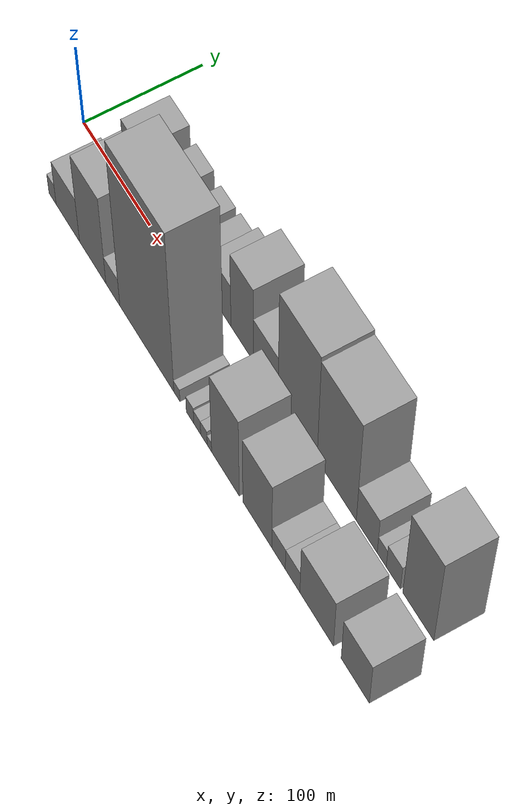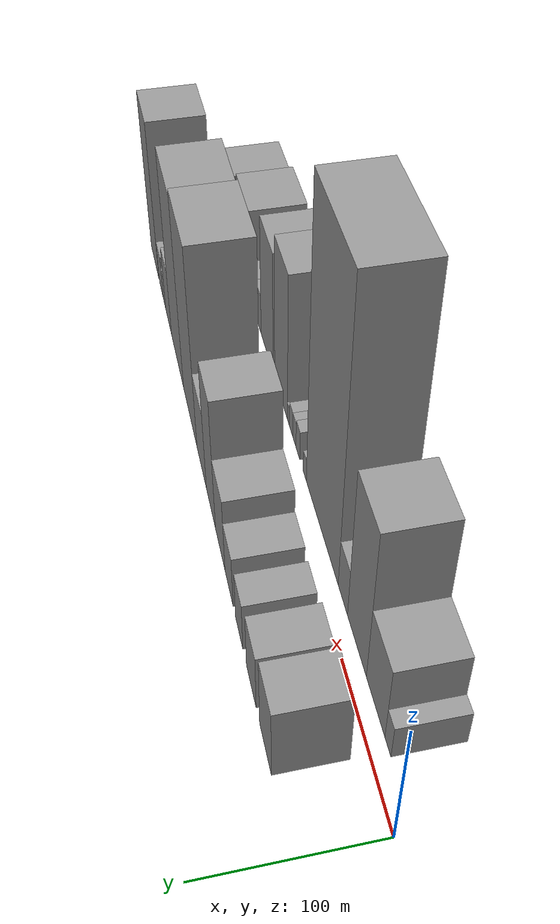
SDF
<sdf version="1.6">
 <world name="default">
  <scene>
   <sky><clouds><speed>12</speed></clouds></sky>
   <ambient>0.4 0.4 0.4 1</ambient>
   <background>0.7 0.7 0.7 1</background>
   <shadows>1</shadows>
  </scene>
  <gravity>0 0 -9.8066</gravity>
  <magnetic_field>6e-06 2.3e-05 -4.2e-05</magnetic_field>
  <physics default="0" name="default_physics" type="ode">
   <ode>
    <solver>
     <type>quick</type>
     <iters>10</iters>
     <sor>1.0</sor>
     <use_dynamic_moi_rescaling>0</use_dynamic_moi_rescaling>
    </solver>
    <constraints>
     <cfm>0</cfm>
     <erp>0.2</erp>
     <contact_max_correcting_vel>100</contact_max_correcting_vel>
     <contact_surface_layer>0.001</contact_surface_layer>
    </constraints>
   </ode>
   <max_step_size>0.004</max_step_size>
   <real_time_factor>1</real_time_factor>
   <real_time_update_rate>250</real_time_update_rate>
  </physics>
  <light name="sun" type="directional">
   <pose>0 0 10 0 0 0</pose>
   <diffuse>0.8 0.8 0.8 1</diffuse>
   <specular>0.2 0.2 0.2 1</specular>
   <attenuation>
    <range>1000</range>
    <constant>0.9</constant>
    <linear>0.01</linear>
    <quadratic>0.001</quadratic>
   </attenuation>
   <direction>-0.5 0.1 -0.9</direction>
  </light>
  <model name="building_1">
   <static>1</static>
   <pose>57.4653 30.0000 0 0.000000 0.000000 1.570796</pose>
   <link name="link">
    <pose>0 0 28.50 0 0 0</pose>
    <collision name="collision"><geometry><box><size>40.0000 28.9307 57.0000</size></box></geometry></collision>
    <visual name="visual">
     <cast_shadows>0</cast_shadows>
     <geometry><box><size>40.0000 28.9307 57.0000</size></box></geometry>
     <material>
      <script>
       <uri>model://grey_wall/materials/scripts</uri>
       <uri>model://grey_wall/materials/textures</uri>
       <name>vrc/grey_wall</name>
      </script>
     </material>
    </visual>
   </link>
  </model>
  <model name="building_2">
   <static>1</static>
   <pose>93.8276 30.0000 0 0.000000 0.000000 1.570796</pose>
   <link name="link">
    <pose>0 0 22.50 0 0 0</pose>
    <collision name="collision"><geometry><box><size>40.0000 25.7937 45.0000</size></box></geometry></collision>
    <visual name="visual">
     <cast_shadows>0</cast_shadows>
     <geometry><box><size>40.0000 25.7937 45.0000</size></box></geometry>
     <material>
      <script>
       <uri>model://grey_wall/materials/scripts</uri>
       <uri>model://grey_wall/materials/textures</uri>
       <name>vrc/grey_wall</name>
      </script>
     </material>
    </visual>
   </link>
  </model>
  <model name="building_3">
   <static>1</static>
   <pose>127.2322 30.0000 0 0.000000 0.000000 1.570796</pose>
   <link name="link">
    <pose>0 0 19.50 0 0 0</pose>
    <collision name="collision"><geometry><box><size>40.0000 21.0156 39.0000</size></box></geometry></collision>
    <visual name="visual">
     <cast_shadows>0</cast_shadows>
     <geometry><box><size>40.0000 21.0156 39.0000</size></box></geometry>
     <material>
      <script>
       <uri>model://grey_wall/materials/scripts</uri>
       <uri>model://grey_wall/materials/textures</uri>
       <name>vrc/grey_wall</name>
      </script>
     </material>
    </visual>
   </link>
  </model>
  <model name="building_4">
   <static>1</static>
   <pose>157.1535 30.0000 0 0.000000 0.000000 1.570796</pose>
   <link name="link">
    <pose>0 0 21.00 0 0 0</pose>
    <collision name="collision"><geometry><box><size>40.0000 24.8269 42.0000</size></box></geometry></collision>
    <visual name="visual">
     <cast_shadows>0</cast_shadows>
     <geometry><box><size>40.0000 24.8269 42.0000</size></box></geometry>
     <material>
      <script>
       <uri>model://grey_wall/materials/scripts</uri>
       <uri>model://grey_wall/materials/textures</uri>
       <name>vrc/grey_wall</name>
      </script>
     </material>
    </visual>
   </link>
  </model>
  <model name="building_5">
   <static>1</static>
   <pose>184.8793 30.0000 0 0.000000 0.000000 1.570796</pose>
   <link name="link">
    <pose>0 0 30.00 0 0 0</pose>
    <collision name="collision"><geometry><box><size>40.0000 30.6247 60.0000</size></box></geometry></collision>
    <visual name="visual">
     <cast_shadows>0</cast_shadows>
     <geometry><box><size>40.0000 30.6247 60.0000</size></box></geometry>
     <material>
      <script>
       <uri>model://grey_wall/materials/scripts</uri>
       <uri>model://grey_wall/materials/textures</uri>
       <name>vrc/grey_wall</name>
      </script>
     </material>
    </visual>
   </link>
  </model>
  <model name="building_6">
   <static>1</static>
   <pose>215.9763 30.0000 0 0.000000 0.000000 1.570796</pose>
   <link name="link">
    <pose>0 0 52.50 0 0 0</pose>
    <collision name="collision"><geometry><box><size>40.0000 31.5693 105.0000</size></box></geometry></collision>
    <visual name="visual">
     <cast_shadows>0</cast_shadows>
     <geometry><box><size>40.0000 31.5693 105.0000</size></box></geometry>
     <material>
      <script>
       <uri>model://grey_wall/materials/scripts</uri>
       <uri>model://grey_wall/materials/textures</uri>
       <name>vrc/grey_wall</name>
      </script>
     </material>
    </visual>
   </link>
  </model>
  <model name="building_7">
   <static>1</static>
   <pose>248.9823 30.0000 0 0.000000 0.000000 1.570796</pose>
   <link name="link">
    <pose>0 0 31.50 0 0 0</pose>
    <collision name="collision"><geometry><box><size>40.0000 34.4428 63.0000</size></box></geometry></collision>
    <visual name="visual">
     <cast_shadows>0</cast_shadows>
     <geometry><box><size>40.0000 34.4428 63.0000</size></box></geometry>
     <material>
      <script>
       <uri>model://grey_wall/materials/scripts</uri>
       <uri>model://grey_wall/materials/textures</uri>
       <name>vrc/grey_wall</name>
      </script>
     </material>
    </visual>
   </link>
  </model>
  <model name="building_8">
   <static>1</static>
   <pose>292.9876 30.0000 0 0.000000 0.000000 1.570796</pose>
   <link name="link">
    <pose>0 0 78.00 0 0 0</pose>
    <collision name="collision"><geometry><box><size>40.0000 53.5677 156.0000</size></box></geometry></collision>
    <visual name="visual">
     <cast_shadows>0</cast_shadows>
     <geometry><box><size>40.0000 53.5677 156.0000</size></box></geometry>
     <material>
      <script>
       <uri>model://grey_wall/materials/scripts</uri>
       <uri>model://grey_wall/materials/textures</uri>
       <name>vrc/grey_wall</name>
      </script>
     </material>
    </visual>
   </link>
  </model>
  <model name="building_9">
   <static>1</static>
   <pose>346.0546 30.0000 0 0.000000 0.000000 1.570796</pose>
   <link name="link">
    <pose>0 0 75.00 0 0 0</pose>
    <collision name="collision"><geometry><box><size>40.0000 52.5664 150.0000</size></box></geometry></collision>
    <visual name="visual">
     <cast_shadows>0</cast_shadows>
     <geometry><box><size>40.0000 52.5664 150.0000</size></box></geometry>
     <material>
      <script>
       <uri>model://grey_wall/materials/scripts</uri>
       <uri>model://grey_wall/materials/textures</uri>
       <name>vrc/grey_wall</name>
      </script>
     </material>
    </visual>
   </link>
  </model>
  <model name="building_10">
   <static>1</static>
   <pose>386.1400 30.0000 0 0.000000 0.000000 1.570796</pose>
   <link name="link">
    <pose>0 0 27.00 0 0 0</pose>
    <collision name="collision"><geometry><box><size>40.0000 27.6044 54.0000</size></box></geometry></collision>
    <visual name="visual">
     <cast_shadows>0</cast_shadows>
     <geometry><box><size>40.0000 27.6044 54.0000</size></box></geometry>
     <material>
      <script>
       <uri>model://grey_wall/materials/scripts</uri>
       <uri>model://grey_wall/materials/textures</uri>
       <name>vrc/grey_wall</name>
      </script>
     </material>
    </visual>
   </link>
  </model>
  <model name="building_11">
   <static>1</static>
   <pose>405.8643 30.0000 0 0.000000 0.000000 1.570796</pose>
   <link name="link">
    <pose>0 0 13.50 0 0 0</pose>
    <collision name="collision"><geometry><box><size>40.0000 11.8440 27.0000</size></box></geometry></collision>
    <visual name="visual">
     <cast_shadows>0</cast_shadows>
     <geometry><box><size>40.0000 11.8440 27.0000</size></box></geometry>
     <material>
      <script>
       <uri>model://grey_wall/materials/scripts</uri>
       <uri>model://grey_wall/materials/textures</uri>
       <name>vrc/grey_wall</name>
      </script>
     </material>
    </visual>
   </link>
  </model>
  <model name="building_12">
   <static>1</static>
   <pose>421.0274 30.0000 0 0.000000 0.000000 1.570796</pose>
   <link name="link">
    <pose>0 0 18.00 0 0 0</pose>
    <collision name="collision"><geometry><box><size>40.0000 18.4822 36.0000</size></box></geometry></collision>
    <visual name="visual">
     <cast_shadows>0</cast_shadows>
     <geometry><box><size>40.0000 18.4822 36.0000</size></box></geometry>
     <material>
      <script>
       <uri>model://grey_wall/materials/scripts</uri>
       <uri>model://grey_wall/materials/textures</uri>
       <name>vrc/grey_wall</name>
      </script>
     </material>
    </visual>
   </link>
  </model>
  <model name="building_13">
   <static>1</static>
   <pose>453.2611 30.0000 0 0.000000 0.000000 1.570796</pose>
   <link name="link">
    <pose>0 0 64.50 0 0 0</pose>
    <collision name="collision"><geometry><box><size>40.0000 39.9852 129.0000</size></box></geometry></collision>
    <visual name="visual">
     <cast_shadows>0</cast_shadows>
     <geometry><box><size>40.0000 39.9852 129.0000</size></box></geometry>
     <material>
      <script>
       <uri>model://grey_wall/materials/scripts</uri>
       <uri>model://grey_wall/materials/textures</uri>
       <name>vrc/grey_wall</name>
      </script>
     </material>
    </visual>
   </link>
  </model>
  <model name="building_14">
   <static>1</static>
   <pose>45.4942 -30.0000 0 0.000000 0.000000 1.570796</pose>
   <link name="link">
    <pose>0 0 13.50 0 0 0</pose>
    <collision name="collision"><geometry><box><size>40.0000 10.9884 27.0000</size></box></geometry></collision>
    <visual name="visual">
     <cast_shadows>0</cast_shadows>
     <geometry><box><size>40.0000 10.9884 27.0000</size></box></geometry>
     <material>
      <script>
       <uri>model://grey_wall/materials/scripts</uri>
       <uri>model://grey_wall/materials/textures</uri>
       <name>vrc/grey_wall</name>
      </script>
     </material>
    </visual>
   </link>
  </model>
  <model name="building_15">
   <static>1</static>
   <pose>68.7588 -30.0000 0 0.000000 0.000000 1.570796</pose>
   <link name="link">
    <pose>0 0 30.00 0 0 0</pose>
    <collision name="collision"><geometry><box><size>40.0000 35.5408 60.0000</size></box></geometry></collision>
    <visual name="visual">
     <cast_shadows>0</cast_shadows>
     <geometry><box><size>40.0000 35.5408 60.0000</size></box></geometry>
     <material>
      <script>
       <uri>model://grey_wall/materials/scripts</uri>
       <uri>model://grey_wall/materials/textures</uri>
       <name>vrc/grey_wall</name>
      </script>
     </material>
    </visual>
   </link>
  </model>
  <model name="building_16">
   <static>1</static>
   <pose>106.2109 -30.0000 0 0.000000 0.000000 1.570796</pose>
   <link name="link">
    <pose>0 0 60.00 0 0 0</pose>
    <collision name="collision"><geometry><box><size>40.0000 39.3634 120.0000</size></box></geometry></collision>
    <visual name="visual">
     <cast_shadows>0</cast_shadows>
     <geometry><box><size>40.0000 39.3634 120.0000</size></box></geometry>
     <material>
      <script>
       <uri>model://grey_wall/materials/scripts</uri>
       <uri>model://grey_wall/materials/textures</uri>
       <name>vrc/grey_wall</name>
      </script>
     </material>
    </visual>
   </link>
  </model>
  <model name="building_17">
   <static>1</static>
   <pose>136.2057 -30.0000 0 0.000000 0.000000 1.570796</pose>
   <link name="link">
    <pose>0 0 19.50 0 0 0</pose>
    <collision name="collision"><geometry><box><size>40.0000 20.6261 39.0000</size></box></geometry></collision>
    <visual name="visual">
     <cast_shadows>0</cast_shadows>
     <geometry><box><size>40.0000 20.6261 39.0000</size></box></geometry>
     <material>
      <script>
       <uri>model://grey_wall/materials/scripts</uri>
       <uri>model://grey_wall/materials/textures</uri>
       <name>vrc/grey_wall</name>
      </script>
     </material>
    </visual>
   </link>
  </model>
  <model name="building_18">
   <static>1</static>
   <pose>185.7027 -30.0000 0 0.000000 0.000000 1.570796</pose>
   <link name="link">
    <pose>0 0 112.50 0 0 0</pose>
    <collision name="collision"><geometry><box><size>40.0000 78.3680 225.0000</size></box></geometry></collision>
    <visual name="visual">
     <cast_shadows>0</cast_shadows>
     <geometry><box><size>40.0000 78.3680 225.0000</size></box></geometry>
     <material>
      <script>
       <uri>model://grey_wall/materials/scripts</uri>
       <uri>model://grey_wall/materials/textures</uri>
       <name>vrc/grey_wall</name>
      </script>
     </material>
    </visual>
   </link>
  </model>
  <model name="building_19">
   <static>1</static>
   <pose>229.2558 -30.0000 0 0.000000 0.000000 1.570796</pose>
   <link name="link">
    <pose>0 0 9.00 0 0 0</pose>
    <collision name="collision"><geometry><box><size>40.0000 8.7381 18.0000</size></box></geometry></collision>
    <visual name="visual">
     <cast_shadows>0</cast_shadows>
     <geometry><box><size>40.0000 8.7381 18.0000</size></box></geometry>
     <material>
      <script>
       <uri>model://grey_wall/materials/scripts</uri>
       <uri>model://grey_wall/materials/textures</uri>
       <name>vrc/grey_wall</name>
      </script>
     </material>
    </visual>
   </link>
  </model>
  <model name="building_20">
   <static>1</static>
   <pose>247.9548 -30.0000 0 0.000000 0.000000 1.570796</pose>
   <link name="link">
    <pose>0 0 12.00 0 0 0</pose>
    <collision name="collision"><geometry><box><size>40.0000 10.6600 24.0000</size></box></geometry></collision>
    <visual name="visual">
     <cast_shadows>0</cast_shadows>
     <geometry><box><size>40.0000 10.6600 24.0000</size></box></geometry>
     <material>
      <script>
       <uri>model://grey_wall/materials/scripts</uri>
       <uri>model://grey_wall/materials/textures</uri>
       <name>vrc/grey_wall</name>
      </script>
     </material>
    </visual>
   </link>
  </model>
  <model name="building_21">
   <static>1</static>
   <pose>258.0757 -30.0000 0 0.000000 0.000000 1.570796</pose>
   <link name="link">
    <pose>0 0 10.50 0 0 0</pose>
    <collision name="collision"><geometry><box><size>40.0000 9.5817 21.0000</size></box></geometry></collision>
    <visual name="visual">
     <cast_shadows>0</cast_shadows>
     <geometry><box><size>40.0000 9.5817 21.0000</size></box></geometry>
     <material>
      <script>
       <uri>model://grey_wall/materials/scripts</uri>
       <uri>model://grey_wall/materials/textures</uri>
       <name>vrc/grey_wall</name>
      </script>
     </material>
    </visual>
   </link>
  </model>
  <model name="building_22">
   <static>1</static>
   <pose>267.4783 -30.0000 0 0.000000 0.000000 1.570796</pose>
   <link name="link">
    <pose>0 0 10.50 0 0 0</pose>
    <collision name="collision"><geometry><box><size>40.0000 9.2234 21.0000</size></box></geometry></collision>
    <visual name="visual">
     <cast_shadows>0</cast_shadows>
     <geometry><box><size>40.0000 9.2234 21.0000</size></box></geometry>
     <material>
      <script>
       <uri>model://grey_wall/materials/scripts</uri>
       <uri>model://grey_wall/materials/textures</uri>
       <name>vrc/grey_wall</name>
      </script>
     </material>
    </visual>
   </link>
  </model>
  <model name="building_23">
   <static>1</static>
   <pose>275.1479 -30.0000 0 0.000000 0.000000 1.570796</pose>
   <link name="link">
    <pose>0 0 7.50 0 0 0</pose>
    <collision name="collision"><geometry><box><size>40.0000 6.1158 15.0000</size></box></geometry></collision>
    <visual name="visual">
     <cast_shadows>0</cast_shadows>
     <geometry><box><size>40.0000 6.1158 15.0000</size></box></geometry>
     <material>
      <script>
       <uri>model://grey_wall/materials/scripts</uri>
       <uri>model://grey_wall/materials/textures</uri>
       <name>vrc/grey_wall</name>
      </script>
     </material>
    </visual>
   </link>
  </model>
  <model name="building_24">
   <static>1</static>
   <pose>297.4063 -30.0000 0 0.000000 0.000000 1.570796</pose>
   <link name="link">
    <pose>0 0 58.50 0 0 0</pose>
    <collision name="collision"><geometry><box><size>40.0000 38.4011 117.0000</size></box></geometry></collision>
    <visual name="visual">
     <cast_shadows>0</cast_shadows>
     <geometry><box><size>40.0000 38.4011 117.0000</size></box></geometry>
     <material>
      <script>
       <uri>model://grey_wall/materials/scripts</uri>
       <uri>model://grey_wall/materials/textures</uri>
       <name>vrc/grey_wall</name>
      </script>
     </material>
    </visual>
   </link>
  </model>
  <model name="building_25">
   <static>1</static>
   <pose>341.2876 -30.0000 0 0.000000 0.000000 1.570796</pose>
   <link name="link">
    <pose>0 0 49.50 0 0 0</pose>
    <collision name="collision"><geometry><box><size>40.0000 39.3615 99.0000</size></box></geometry></collision>
    <visual name="visual">
     <cast_shadows>0</cast_shadows>
     <geometry><box><size>40.0000 39.3615 99.0000</size></box></geometry>
     <material>
      <script>
       <uri>model://grey_wall/materials/scripts</uri>
       <uri>model://grey_wall/materials/textures</uri>
       <name>vrc/grey_wall</name>
      </script>
     </material>
    </visual>
   </link>
  </model>
  <model name="building_26">
   <static>1</static>
   <pose>370.0428 -30.0000 0 0.000000 0.000000 1.570796</pose>
   <link name="link">
    <pose>0 0 16.50 0 0 0</pose>
    <collision name="collision"><geometry><box><size>40.0000 18.1487 33.0000</size></box></geometry></collision>
    <visual name="visual">
     <cast_shadows>0</cast_shadows>
     <geometry><box><size>40.0000 18.1487 33.0000</size></box></geometry>
     <material>
      <script>
       <uri>model://grey_wall/materials/scripts</uri>
       <uri>model://grey_wall/materials/textures</uri>
       <name>vrc/grey_wall</name>
      </script>
     </material>
    </visual>
   </link>
  </model>
  <model name="building_27">
   <static>1</static>
   <pose>388.8903 -30.0000 0 0.000000 0.000000 1.570796</pose>
   <link name="link">
    <pose>0 0 16.50 0 0 0</pose>
    <collision name="collision"><geometry><box><size>40.0000 19.5464 33.0000</size></box></geometry></collision>
    <visual name="visual">
     <cast_shadows>0</cast_shadows>
     <geometry><box><size>40.0000 19.5464 33.0000</size></box></geometry>
     <material>
      <script>
       <uri>model://grey_wall/materials/scripts</uri>
       <uri>model://grey_wall/materials/textures</uri>
       <name>vrc/grey_wall</name>
      </script>
     </material>
    </visual>
   </link>
  </model>
  <model name="building_28">
   <static>1</static>
   <pose>420.8466 -30.0000 0 0.000000 0.000000 1.570796</pose>
   <link name="link">
    <pose>0 0 37.50 0 0 0</pose>
    <collision name="collision"><geometry><box><size>40.0000 44.3663 75.0000</size></box></geometry></collision>
    <visual name="visual">
     <cast_shadows>0</cast_shadows>
     <geometry><box><size>40.0000 44.3663 75.0000</size></box></geometry>
     <material>
      <script>
       <uri>model://grey_wall/materials/scripts</uri>
       <uri>model://grey_wall/materials/textures</uri>
       <name>vrc/grey_wall</name>
      </script>
     </material>
    </visual>
   </link>
  </model>
  <model name="building_29">
   <static>1</static>
   <pose>471.2513 -30.0000 0 0.000000 0.000000 1.570796</pose>
   <link name="link">
    <pose>0 0 33.00 0 0 0</pose>
    <collision name="collision"><geometry><box><size>40.0000 36.4431 66.0000</size></box></geometry></collision>
    <visual name="visual">
     <cast_shadows>0</cast_shadows>
     <geometry><box><size>40.0000 36.4431 66.0000</size></box></geometry>
     <material>
      <script>
       <uri>model://grey_wall/materials/scripts</uri>
       <uri>model://grey_wall/materials/textures</uri>
       <name>vrc/grey_wall</name>
      </script>
     </material>
    </visual>
   </link>
  </model>
 </world>
</sdf>
